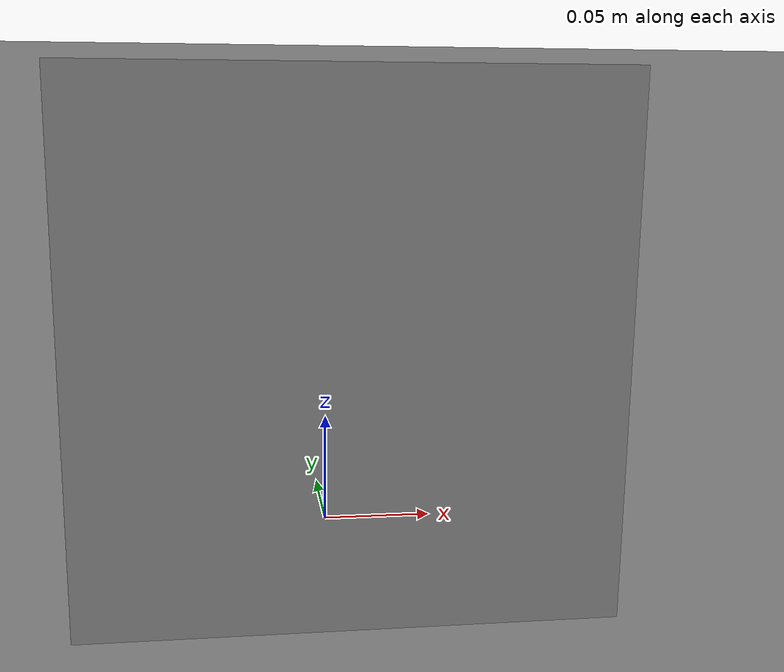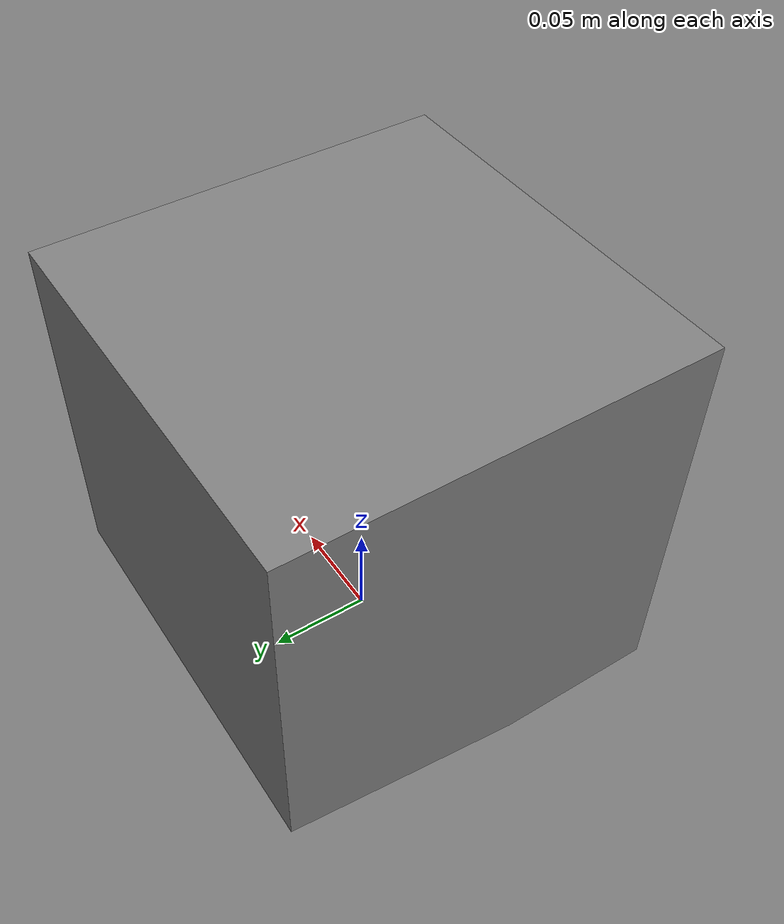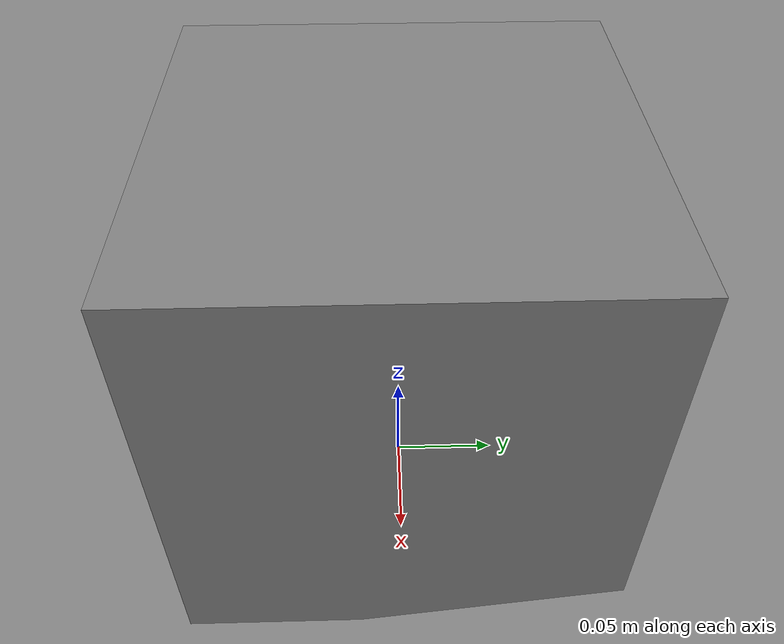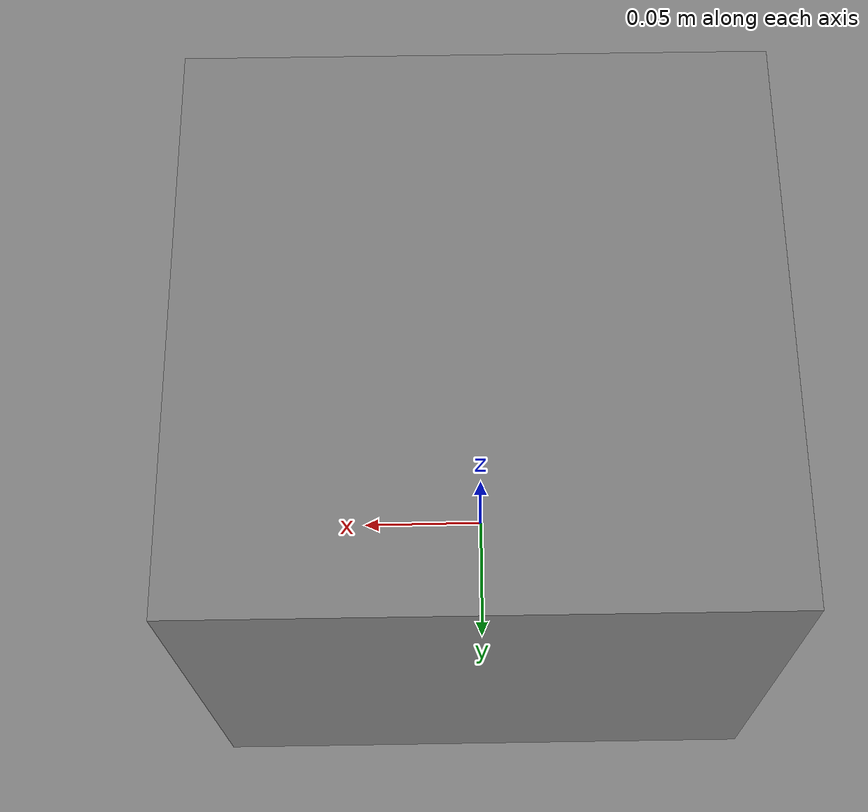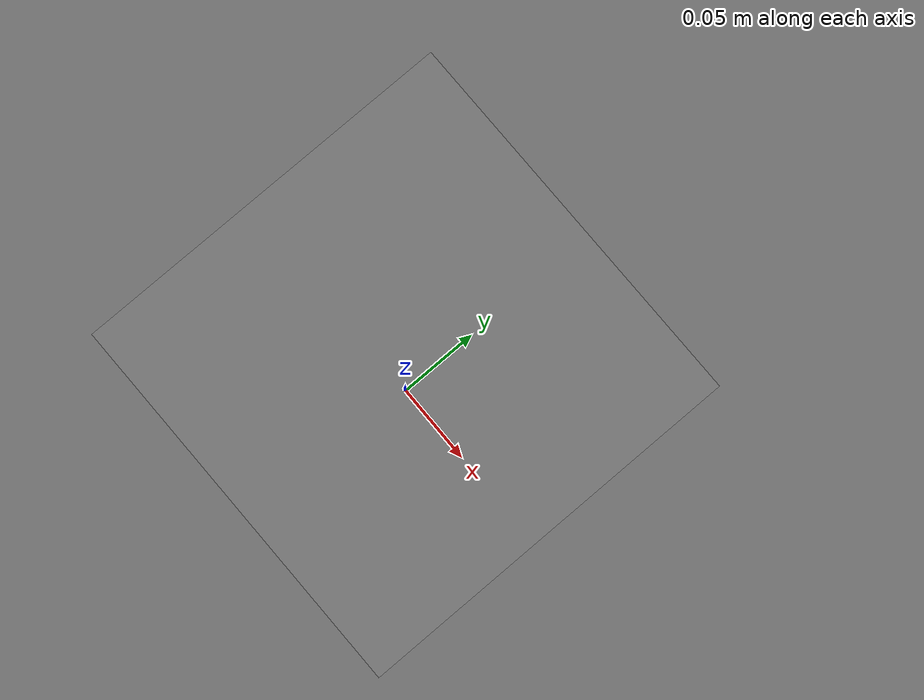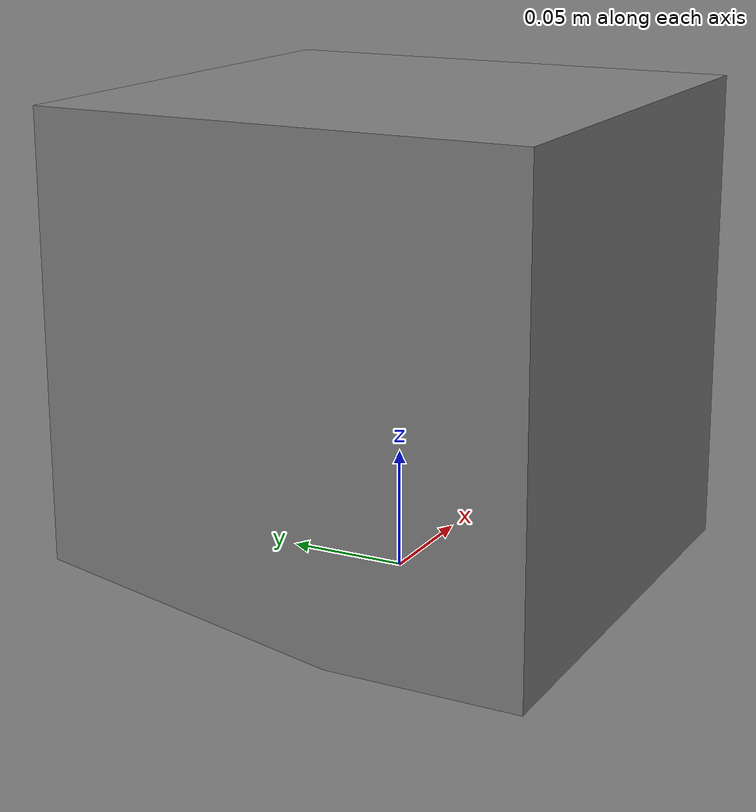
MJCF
<mujoco model="pyr_nonneg">
            <option gravity="0 0 -9.81" solver="PGS" cone="pyramidal"
                    iterations="100" noslip_iterations="50" noslip_tolerance="1e-12"/>
            <worldbody>
                <body pos="0 0 0.099">
                    <joint type="free"/>
                    <geom type="box" size="0.1 0.1 0.1" mass="1.0"
                          friction="0.5 0.5 0.005"/>
                </body>
                <geom type="plane" size="5 5 0.1"
                      euler="10 0 0" friction="0.5 0.5 0.005"/>
            </worldbody>
        </mujoco>
